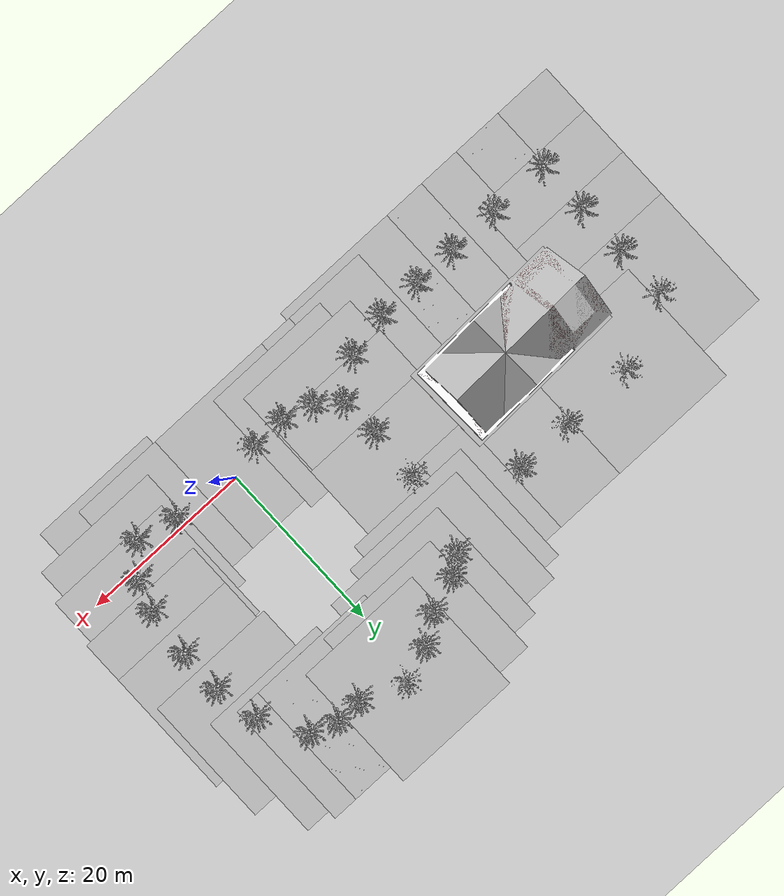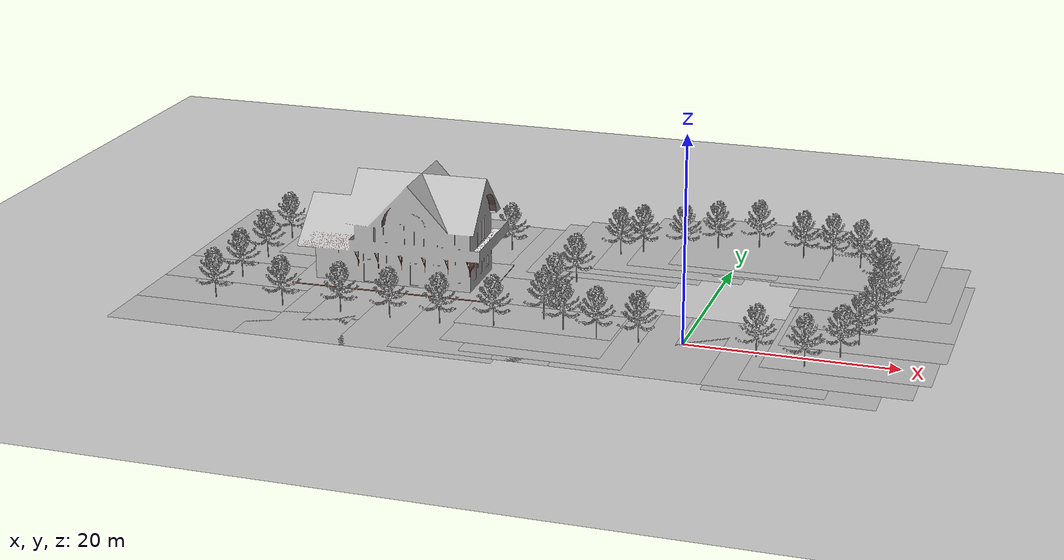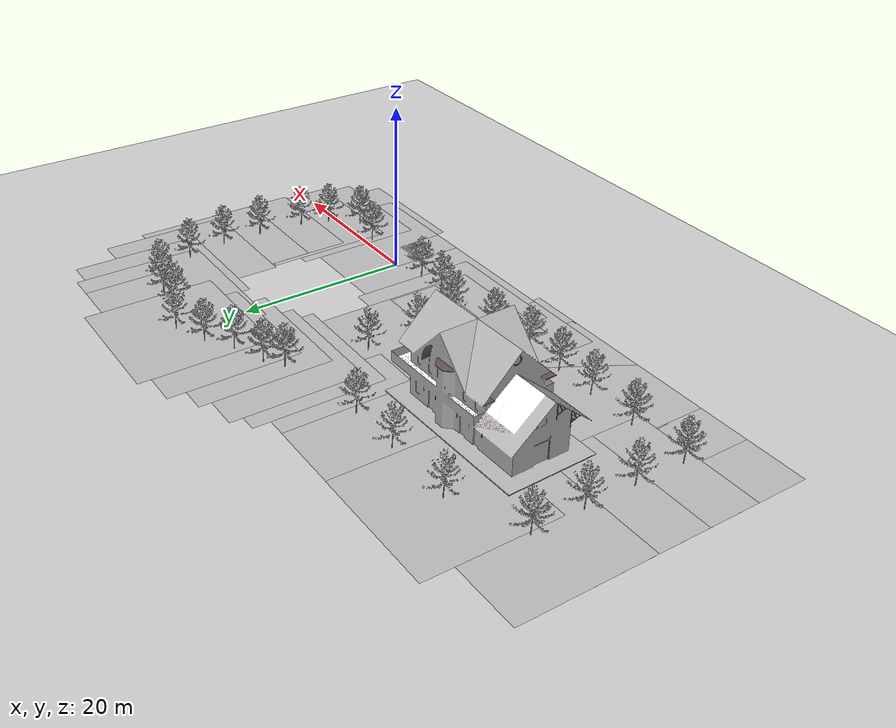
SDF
<sdf version="1.4">
 <world name="default">
  <light name="sun" type="directional">
   <pose>0 0 10 0 -0 0</pose>
   <diffuse>0.8 0.8 0.8 1</diffuse>
   <specular>0.2 0.2 0.2 1</specular>
   <attenuation>
    <range>1000</range>
    <constant>0.9</constant>
    <linear>0.01</linear>
    <quadratic>0.001</quadratic>
   </attenuation>
   <direction>-0.5 0.1 -0.9</direction>
  </light>
  <model name="ground_plane">
   <static>1</static>
   <link name="link">
    <collision name="collision">
     <geometry><plane><normal>0 0 1</normal><size>100 100</size></plane></geometry>
     <surface><friction><ode><mu>100</mu><mu2>50</mu2></ode></friction></surface>
    </collision>
    <visual name="visual">
     <cast_shadows>0</cast_shadows>
     <geometry><plane><normal>0 0 1</normal><size>100 100</size></plane></geometry>
     <material>
      <script><uri>file://media/materials/scripts/gazebo.material</uri><name>Gazebo/Grey</name></script>
     </material>
    </visual>
    <velocity_decay><linear>0</linear><angular>0</angular></velocity_decay>
   </link>
  </model>
  <physics type="ode">
   <max_step_size>0.001</max_step_size>
   <real_time_factor>1</real_time_factor>
   <real_time_update_rate>1000</real_time_update_rate>
   <gravity>0 0 -9.8</gravity>
  </physics>
  <scene><ambient>0.4 0.4 0.4 1</ambient><background>0.7 0.7 0.7 1</background><shadows>1</shadows></scene>
  <spherical_coordinates>
   <surface_model>EARTH_WGS84</surface_model>
   <latitude_deg>0</latitude_deg>
   <longitude_deg>0</longitude_deg>
   <elevation>0</elevation>
   <heading_deg>0</heading_deg>
  </spherical_coordinates>
  <model name="3DTree">
   <static>1</static>
   <link name="3dtree">
    <pose>0 0 0 1.57 -0 0</pose>
    <collision name="collision">
     <geometry><mesh><uri>model://3DTree/meshes/3DTree.dae</uri></mesh></geometry>
    </collision>
    <visual name="visual"><geometry><mesh><uri>model://3DTree/meshes/3DTree.dae</uri></mesh></geometry></visual>
    <velocity_decay><linear>0</linear><angular>0</angular></velocity_decay>
   </link>
   <pose>-4 -1 0 0 -0 0</pose>
  </model>
  <model name="3DTree_0">
   <static>1</static>
   <link name="3dtree">
    <pose>0 0 0 1.57 -0 0</pose>
    <collision name="collision">
     <geometry><mesh><uri>model://3DTree/meshes/3DTree.dae</uri></mesh></geometry>
    </collision>
    <visual name="visual"><geometry><mesh><uri>model://3DTree/meshes/3DTree.dae</uri></mesh></geometry></visual>
    <velocity_decay><linear>0</linear><angular>0</angular></velocity_decay>
   </link>
   <pose>-8 -1 0 0 -0 0</pose>
  </model>
  <model name="3DTree_1">
   <static>1</static>
   <link name="3dtree">
    <pose>0 0 0 1.57 -0 0</pose>
    <collision name="collision">
     <geometry><mesh><uri>model://3DTree/meshes/3DTree.dae</uri></mesh></geometry>
    </collision>
    <visual name="visual"><geometry><mesh><uri>model://3DTree/meshes/3DTree.dae</uri></mesh></geometry></visual>
    <velocity_decay><linear>0</linear><angular>0</angular></velocity_decay>
   </link>
   <pose>-11.4858 0 0 0 -0 0</pose>
  </model>
  <model name="3DTree_2">
   <static>1</static>
   <link name="3dtree">
    <pose>0 0 0 1.57 -0 0</pose>
    <collision name="collision">
     <geometry><mesh><uri>model://3DTree/meshes/3DTree.dae</uri></mesh></geometry>
    </collision>
    <visual name="visual"><geometry><mesh><uri>model://3DTree/meshes/3DTree.dae</uri></mesh></geometry></visual>
    <velocity_decay><linear>0</linear><angular>0</angular></velocity_decay>
   </link>
   <pose>-14.2457 6.44656 0 0 -0 0</pose>
  </model>
  <model name="3DTree_3">
   <static>1</static>
   <link name="3dtree">
    <pose>0 0 0 1.57 -0 0</pose>
    <collision name="collision">
     <geometry><mesh><uri>model://3DTree/meshes/3DTree.dae</uri></mesh></geometry>
    </collision>
    <visual name="visual"><geometry><mesh><uri>model://3DTree/meshes/3DTree.dae</uri></mesh></geometry></visual>
    <velocity_decay><linear>0</linear><angular>0</angular></velocity_decay>
   </link>
   <pose>-14 2 0 0 -0 0</pose>
  </model>
  <model name="3DTree_4">
   <static>1</static>
   <link name="3dtree">
    <pose>0 0 0 1.57 -0 0</pose>
    <collision name="collision">
     <geometry><mesh><uri>model://3DTree/meshes/3DTree.dae</uri></mesh></geometry>
    </collision>
    <visual name="visual"><geometry><mesh><uri>model://3DTree/meshes/3DTree.dae</uri></mesh></geometry></visual>
    <velocity_decay><linear>0</linear><angular>0</angular></velocity_decay>
   </link>
   <pose>7 -1 0 0 -0 0</pose>
  </model>
  <model name="3DTree_5">
   <static>1</static>
   <link name="3dtree">
    <pose>0 0 0 1.57 -0 0</pose>
    <collision name="collision">
     <geometry><mesh><uri>model://3DTree/meshes/3DTree.dae</uri></mesh></geometry>
    </collision>
    <visual name="visual"><geometry><mesh><uri>model://3DTree/meshes/3DTree.dae</uri></mesh></geometry></visual>
    <velocity_decay><linear>0</linear><angular>0</angular></velocity_decay>
   </link>
   <pose>11.6122 -2.03851 0 0 -0 0</pose>
  </model>
  <model name="3DTree_6">
   <static>1</static>
   <link name="3dtree">
    <pose>0 0 0 1.57 -0 0</pose>
    <collision name="collision">
     <geometry><mesh><uri>model://3DTree/meshes/3DTree.dae</uri></mesh></geometry>
    </collision>
    <visual name="visual"><geometry><mesh><uri>model://3DTree/meshes/3DTree.dae</uri></mesh></geometry></visual>
    <velocity_decay><linear>0</linear><angular>0</angular></velocity_decay>
   </link>
   <pose>15.4126 4.43659 0 0 -0 0</pose>
  </model>
  <model name="3DTree_7">
   <static>1</static>
   <link name="3dtree">
    <pose>0 0 0 1.57 -0 0</pose>
    <collision name="collision">
     <geometry><mesh><uri>model://3DTree/meshes/3DTree.dae</uri></mesh></geometry>
    </collision>
    <visual name="visual"><geometry><mesh><uri>model://3DTree/meshes/3DTree.dae</uri></mesh></geometry></visual>
    <velocity_decay><linear>0</linear><angular>0</angular></velocity_decay>
   </link>
   <pose>14.2898 1.04496 0 0 -0 0</pose>
  </model>
  <model name="3DTree_8">
   <static>1</static>
   <link name="3dtree">
    <pose>0 0 0 1.57 -0 0</pose>
    <collision name="collision">
     <geometry><mesh><uri>model://3DTree/meshes/3DTree.dae</uri></mesh></geometry>
    </collision>
    <visual name="visual"><geometry><mesh><uri>model://3DTree/meshes/3DTree.dae</uri></mesh></geometry></visual>
    <velocity_decay><linear>0</linear><angular>0</angular></velocity_decay>
   </link>
   <pose>16 15 0 0 -0 0</pose>
  </model>
  <model name="3DTree_9">
   <static>1</static>
   <link name="3dtree">
    <pose>0 0 0 1.57 -0 0</pose>
    <collision name="collision">
     <geometry><mesh><uri>model://3DTree/meshes/3DTree.dae</uri></mesh></geometry>
    </collision>
    <visual name="visual"><geometry><mesh><uri>model://3DTree/meshes/3DTree.dae</uri></mesh></geometry></visual>
    <velocity_decay><linear>0</linear><angular>0</angular></velocity_decay>
   </link>
   <pose>12 25 0 0 -0 0</pose>
  </model>
  <model name="3DTree_10">
   <static>1</static>
   <link name="3dtree">
    <pose>0 0 0 1.57 -0 0</pose>
    <collision name="collision">
     <geometry><mesh><uri>model://3DTree/meshes/3DTree.dae</uri></mesh></geometry>
    </collision>
    <visual name="visual"><geometry><mesh><uri>model://3DTree/meshes/3DTree.dae</uri></mesh></geometry></visual>
    <velocity_decay><linear>0</linear><angular>0</angular></velocity_decay>
   </link>
   <pose>1 28 0 0 -0 0</pose>
  </model>
  <model name="3DTree_11">
   <static>1</static>
   <link name="3dtree">
    <pose>0 0 0 1.57 -0 0</pose>
    <collision name="collision">
     <geometry><mesh><uri>model://3DTree/meshes/3DTree.dae</uri></mesh></geometry>
    </collision>
    <visual name="visual"><geometry><mesh><uri>model://3DTree/meshes/3DTree.dae</uri></mesh></geometry></visual>
    <velocity_decay><linear>0</linear><angular>0</angular></velocity_decay>
   </link>
   <pose>6 26 0 0 -0 0</pose>
  </model>
  <model name="3DTree_12">
   <static>1</static>
   <link name="3dtree">
    <pose>0 0 0 1.57 -0 0</pose>
    <collision name="collision">
     <geometry><mesh><uri>model://3DTree/meshes/3DTree.dae</uri></mesh></geometry>
    </collision>
    <visual name="visual"><geometry><mesh><uri>model://3DTree/meshes/3DTree.dae</uri></mesh></geometry></visual>
    <velocity_decay><linear>0</linear><angular>0</angular></velocity_decay>
   </link>
   <pose>-6 24.4001 0 0 -0 0</pose>
  </model>
  <model name="3DTree_13">
   <static>1</static>
   <link name="3dtree">
    <pose>0 0 0 1.57 -0 0</pose>
    <collision name="collision">
     <geometry><mesh><uri>model://3DTree/meshes/3DTree.dae</uri></mesh></geometry>
    </collision>
    <visual name="visual"><geometry><mesh><uri>model://3DTree/meshes/3DTree.dae</uri></mesh></geometry></visual>
    <velocity_decay><linear>0</linear><angular>0</angular></velocity_decay>
   </link>
   <pose>-12 21.5092 0 0 -0 0</pose>
  </model>
  <model name="3DTree_14">
   <static>1</static>
   <link name="3dtree">
    <pose>0 0 0 1.57 -0 0</pose>
    <collision name="collision">
     <geometry><mesh><uri>model://3DTree/meshes/3DTree.dae</uri></mesh></geometry>
    </collision>
    <visual name="visual"><geometry><mesh><uri>model://3DTree/meshes/3DTree.dae</uri></mesh></geometry></visual>
    <velocity_decay><linear>0</linear><angular>0</angular></velocity_decay>
   </link>
   <pose>-14 12.5459 0 0 -0 0</pose>
  </model>
  <model name="3DTree_15">
   <static>1</static>
   <link name="3dtree">
    <pose>0 0 0 1.57 -0 0</pose>
    <collision name="collision">
     <geometry><mesh><uri>model://3DTree/meshes/3DTree.dae</uri></mesh></geometry>
    </collision>
    <visual name="visual"><geometry><mesh><uri>model://3DTree/meshes/3DTree.dae</uri></mesh></geometry></visual>
    <velocity_decay><linear>0</linear><angular>0</angular></velocity_decay>
   </link>
   <pose>16 10 0 0 -0 0</pose>
  </model>
  <model name="3DTree_16">
   <static>1</static>
   <link name="3dtree">
    <pose>0 0 0 1.57 -0 0</pose>
    <collision name="collision">
     <geometry><mesh><uri>model://3DTree/meshes/3DTree.dae</uri></mesh></geometry>
    </collision>
    <visual name="visual"><geometry><mesh><uri>model://3DTree/meshes/3DTree.dae</uri></mesh></geometry></visual>
    <velocity_decay><linear>0</linear><angular>0</angular></velocity_decay>
   </link>
   <pose>15 20 0 0 -0 0</pose>
  </model>
  <model name="3DTree_17">
   <static>1</static>
   <link name="3dtree">
    <pose>0 0 0 1.57 -0 0</pose>
    <collision name="collision">
     <geometry><mesh><uri>model://3DTree/meshes/3DTree.dae</uri></mesh></geometry>
    </collision>
    <visual name="visual"><geometry><mesh><uri>model://3DTree/meshes/3DTree.dae</uri></mesh></geometry></visual>
    <velocity_decay><linear>0</linear><angular>0</angular></velocity_decay>
   </link>
   <pose>9 26 0 0 -0 0</pose>
  </model>
  <model name="3DTree_18">
   <static>1</static>
   <link name="3dtree">
    <pose>0 0 0 1.57 -0 0</pose>
    <collision name="collision">
     <geometry><mesh><uri>model://3DTree/meshes/3DTree.dae</uri></mesh></geometry>
    </collision>
    <visual name="visual"><geometry><mesh><uri>model://3DTree/meshes/3DTree.dae</uri></mesh></geometry></visual>
    <velocity_decay><linear>0</linear><angular>0</angular></velocity_decay>
   </link>
   <pose>-3 26.4739 0 0 -0 0</pose>
  </model>
  <model name="3DTree_19">
   <static>1</static>
   <link name="3dtree">
    <pose>0 0 0 1.57 -0 0</pose>
    <collision name="collision">
     <geometry><mesh><uri>model://3DTree/meshes/3DTree.dae</uri></mesh></geometry>
    </collision>
    <visual name="visual"><geometry><mesh><uri>model://3DTree/meshes/3DTree.dae</uri></mesh></geometry></visual>
    <velocity_decay><linear>0</linear><angular>0</angular></velocity_decay>
   </link>
   <pose>-10 23 0 0 -0 0</pose>
  </model>
  <model name="House05">
   <static>1</static>
   <link name="house">
    <collision name="collision">
     <geometry><mesh><uri>model://House05/meshes/House05.dae</uri></mesh></geometry>
    </collision>
    <visual name="visual"><geometry><mesh><uri>model://House05/meshes/House05.dae</uri></mesh></geometry></visual>
    <velocity_decay><linear>0</linear><angular>0</angular></velocity_decay>
   </link>
   <pose>-31.0217 13.1135 0 0 0 -0.548499</pose>
  </model>
  <model name="3DTree_20">
   <static>1</static>
   <link name="3dtree">
    <pose>0 0 0 1.57 -0 0</pose>
    <collision name="collision">
     <geometry><mesh><uri>model://3DTree/meshes/3DTree.dae</uri></mesh></geometry>
    </collision>
    <visual name="visual"><geometry><mesh><uri>model://3DTree/meshes/3DTree.dae</uri></mesh></geometry></visual>
    <velocity_decay><linear>0</linear><angular>0</angular></velocity_decay>
   </link>
   <pose>-18 -1 0 0 -0 0</pose>
  </model>
  <model name="3DTree_21">
   <static>1</static>
   <link name="3dtree">
    <pose>0 0 0 1.57 -0 0</pose>
    <collision name="collision">
     <geometry><mesh><uri>model://3DTree/meshes/3DTree.dae</uri></mesh></geometry>
    </collision>
    <visual name="visual"><geometry><mesh><uri>model://3DTree/meshes/3DTree.dae</uri></mesh></geometry></visual>
    <velocity_decay><linear>0</linear><angular>0</angular></velocity_decay>
   </link>
   <pose>-23 -2 0 0 -0 0</pose>
  </model>
  <model name="3DTree_22">
   <static>1</static>
   <link name="3dtree">
    <pose>0 0 0 1.57 -0 0</pose>
    <collision name="collision">
     <geometry><mesh><uri>model://3DTree/meshes/3DTree.dae</uri></mesh></geometry>
    </collision>
    <visual name="visual"><geometry><mesh><uri>model://3DTree/meshes/3DTree.dae</uri></mesh></geometry></visual>
    <velocity_decay><linear>0</linear><angular>0</angular></velocity_decay>
   </link>
   <pose>-28 -2 0 0 -0 0</pose>
  </model>
  <model name="3DTree_23">
   <static>1</static>
   <link name="3dtree">
    <pose>0 0 0 1.57 -0 0</pose>
    <collision name="collision">
     <geometry><mesh><uri>model://3DTree/meshes/3DTree.dae</uri></mesh></geometry>
    </collision>
    <visual name="visual"><geometry><mesh><uri>model://3DTree/meshes/3DTree.dae</uri></mesh></geometry></visual>
    <velocity_decay><linear>0</linear><angular>0</angular></velocity_decay>
   </link>
   <pose>-33 -2 0 0 -0 0</pose>
  </model>
  <model name="3DTree_24">
   <static>1</static>
   <link name="3dtree">
    <pose>0 0 0 1.57 -0 0</pose>
    <collision name="collision">
     <geometry><mesh><uri>model://3DTree/meshes/3DTree.dae</uri></mesh></geometry>
    </collision>
    <visual name="visual"><geometry><mesh><uri>model://3DTree/meshes/3DTree.dae</uri></mesh></geometry></visual>
    <velocity_decay><linear>0</linear><angular>0</angular></velocity_decay>
   </link>
   <pose>-39 -2 0 0 -0 0</pose>
  </model>
  <model name="3DTree_25">
   <static>1</static>
   <link name="3dtree">
    <pose>0 0 0 1.57 -0 0</pose>
    <collision name="collision">
     <geometry><mesh><uri>model://3DTree/meshes/3DTree.dae</uri></mesh></geometry>
    </collision>
    <visual name="visual"><geometry><mesh><uri>model://3DTree/meshes/3DTree.dae</uri></mesh></geometry></visual>
    <velocity_decay><linear>0</linear><angular>0</angular></velocity_decay>
   </link>
   <pose>-46 -2 0 0 -0 0</pose>
  </model>
  <model name="3DTree_26">
   <static>1</static>
   <link name="3dtree">
    <pose>0 0 0 1.57 -0 0</pose>
    <collision name="collision">
     <geometry><mesh><uri>model://3DTree/meshes/3DTree.dae</uri></mesh></geometry>
    </collision>
    <visual name="visual"><geometry><mesh><uri>model://3DTree/meshes/3DTree.dae</uri></mesh></geometry></visual>
    <velocity_decay><linear>0</linear><angular>0</angular></velocity_decay>
   </link>
   <pose>-46 4 0 0 -0 0</pose>
  </model>
  <model name="3DTree_27">
   <static>1</static>
   <link name="3dtree">
    <pose>0 0 0 1.57 -0 0</pose>
    <collision name="collision">
     <geometry><mesh><uri>model://3DTree/meshes/3DTree.dae</uri></mesh></geometry>
    </collision>
    <visual name="visual"><geometry><mesh><uri>model://3DTree/meshes/3DTree.dae</uri></mesh></geometry></visual>
    <velocity_decay><linear>0</linear><angular>0</angular></velocity_decay>
   </link>
   <pose>-46 10 0 0 -0 0</pose>
  </model>
  <model name="3DTree_28">
   <static>1</static>
   <link name="3dtree">
    <pose>0 0 0 1.57 -0 0</pose>
    <collision name="collision">
     <geometry><mesh><uri>model://3DTree/meshes/3DTree.dae</uri></mesh></geometry>
    </collision>
    <visual name="visual"><geometry><mesh><uri>model://3DTree/meshes/3DTree.dae</uri></mesh></geometry></visual>
    <velocity_decay><linear>0</linear><angular>0</angular></velocity_decay>
   </link>
   <pose>-46 16 0 0 -0 0</pose>
  </model>
  <model name="3DTree_29">
   <static>1</static>
   <link name="3dtree">
    <pose>0 0 0 1.57 -0 0</pose>
    <collision name="collision">
     <geometry><mesh><uri>model://3DTree/meshes/3DTree.dae</uri></mesh></geometry>
    </collision>
    <visual name="visual"><geometry><mesh><uri>model://3DTree/meshes/3DTree.dae</uri></mesh></geometry></visual>
    <velocity_decay><linear>0</linear><angular>0</angular></velocity_decay>
   </link>
   <pose>-23 19.4955 0 0 -0 0</pose>
  </model>
  <model name="3DTree_30">
   <static>1</static>
   <link name="3dtree">
    <pose>0 0 0 1.57 -0 0</pose>
    <collision name="collision">
     <geometry><mesh><uri>model://3DTree/meshes/3DTree.dae</uri></mesh></geometry>
    </collision>
    <visual name="visual"><geometry><mesh><uri>model://3DTree/meshes/3DTree.dae</uri></mesh></geometry></visual>
    <velocity_decay><linear>0</linear><angular>0</angular></velocity_decay>
   </link>
   <pose>-29.5538 19.5091 0 0 -0 0</pose>
  </model>
  <model name="3DTree_31">
   <static>1</static>
   <link name="3dtree">
    <pose>0 0 0 1.57 -0 0</pose>
    <collision name="collision">
     <geometry><mesh><uri>model://3DTree/meshes/3DTree.dae</uri></mesh></geometry>
    </collision>
    <visual name="visual"><geometry><mesh><uri>model://3DTree/meshes/3DTree.dae</uri></mesh></geometry></visual>
    <velocity_decay><linear>0</linear><angular>0</angular></velocity_decay>
   </link>
   <pose>-38 19.5333 0 0 -0 0</pose>
  </model>
 </world>
</sdf>
